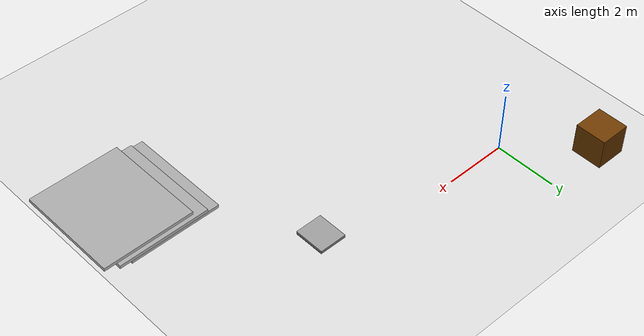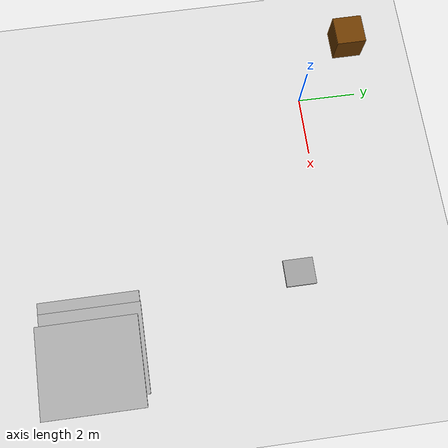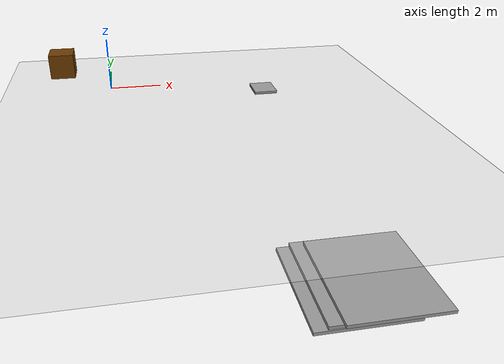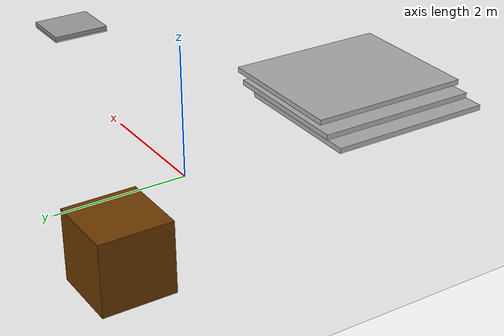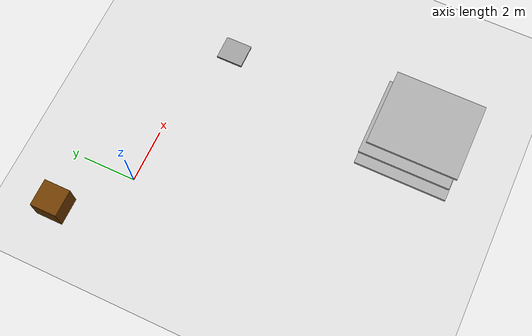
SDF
<sdf version="1.7">
 <world name="default">
  <model name="ground_plane">
   <static>1</static>
   <link name="link">
    <collision name="collision">
     <geometry><plane><normal>0 0 1</normal><size>100 100</size></plane></geometry>
     <surface><friction><ode><mu>100</mu><mu2>50</mu2></ode></friction></surface>
    </collision>
    <visual name="visual">
     <cast_shadows>0</cast_shadows>
     <geometry><plane><normal>0 0 1</normal><size>100 100</size></plane></geometry>
     <material>
      <script><uri>file://media/materials/scripts/gazebo.material</uri><name>Gazebo/Grey</name></script>
     </material>
    </visual>
   </link>
  </model>
  <model name="static_environment">
   <static>1</static>
   <link name="static_box">
    <pose>-2 2 0.5 0 -0 0</pose>
    <collision name="static_box_collision"><geometry><box><size>1 1 1</size></box></geometry></collision>
    <visual name="static_box_visual">
     <geometry><box><size>1 1 1</size></box></geometry>
     <material><ambient>0.2 0.2 0.2 1</ambient><diffuse>0.421 0.225 0 1</diffuse></material>
    </visual>
   </link>
  </model>
  <model name="Untitled_0">
   <link name="link_0">
    <inertial>
     <mass>1.68503</mass>
     <inertia><ixx>2.15864</ixx><ixy>0</ixy><ixz>0</ixz><iyy>1.66859</iyy><iyz>0</iyz><izz>3.82285</izz></inertia>
    </inertial>
    <pose>-0.45963 0.03371 -0.129963 0 -0 0</pose>
    <visual name="visual">
     <geometry><box><size>3.4449 3.91883 0.12488</size></box></geometry>
     <material>
      <lighting>1</lighting>
      <script><uri>file://media/materials/scripts/gazebo.material</uri><name>Gazebo/Grey</name></script>
      <shader type="pixel"/>
     </material>
    </visual>
    <collision name="collision">
     <geometry><box><size>3.4449 3.91883 0.12488</size></box></geometry>
     <surface>
      <friction>
       <ode><mu>1</mu><mu2>1</mu2><fdir1>0 0 0</fdir1><slip1>0</slip1><slip2>0</slip2></ode>
       <torsional>
        <coefficient>1</coefficient>
        <patch_radius>0</patch_radius>
        <surface_radius>0</surface_radius>
        <use_patch_radius>1</use_patch_radius>
        <ode><slip>0</slip></ode>
       </torsional>
      </friction>
      <bounce><restitution_coefficient>0</restitution_coefficient><threshold>1e+06</threshold></bounce>
      <contact>
       <collide_without_contact>0</collide_without_contact>
       <collide_without_contact_bitmask>1</collide_without_contact_bitmask>
       <collide_bitmask>1</collide_bitmask>
       <ode>
        <soft_cfm>0</soft_cfm>
        <soft_erp>0.2</soft_erp>
        <kp>1e+13</kp>
        <kd>1</kd>
        <max_vel>0.01</max_vel>
        <min_depth>0</min_depth>
       </ode>
       <bullet>
        <split_impulse>1</split_impulse>
        <split_impulse_penetration_threshold>-0.01</split_impulse_penetration_threshold>
        <soft_cfm>0</soft_cfm>
        <soft_erp>0.2</soft_erp>
        <kp>1e+13</kp>
        <kd>1</kd>
       </bullet>
      </contact>
     </surface>
    </collision>
   </link>
   <link name="link_0_clone">
    <inertial>
     <mass>1.68503</mass>
     <inertia><ixx>2.15864</ixx><ixy>0</ixy><ixz>0</ixz><iyy>1.66859</iyy><iyz>0</iyz><izz>3.82285</izz></inertia>
    </inertial>
    <pose>-0.00552 0.0581 0.005063 0 -0 0</pose>
    <visual name="visual">
     <geometry><box><size>3.4449 3.91883 0.12488</size></box></geometry>
     <material>
      <lighting>1</lighting>
      <script><uri>file://media/materials/scripts/gazebo.material</uri><name>Gazebo/Grey</name></script>
      <shader type="pixel"/>
     </material>
    </visual>
    <collision name="collision">
     <geometry><box><size>3.4449 3.91883 0.12488</size></box></geometry>
     <surface>
      <friction>
       <ode><mu>1</mu><mu2>1</mu2><fdir1>0 0 0</fdir1><slip1>0</slip1><slip2>0</slip2></ode>
       <torsional>
        <coefficient>1</coefficient>
        <patch_radius>0</patch_radius>
        <surface_radius>0</surface_radius>
        <use_patch_radius>1</use_patch_radius>
        <ode><slip>0</slip></ode>
       </torsional>
      </friction>
      <bounce><restitution_coefficient>0</restitution_coefficient><threshold>1e+06</threshold></bounce>
      <contact>
       <collide_without_contact>0</collide_without_contact>
       <collide_without_contact_bitmask>1</collide_without_contact_bitmask>
       <collide_bitmask>1</collide_bitmask>
       <ode>
        <soft_cfm>0</soft_cfm>
        <soft_erp>0.2</soft_erp>
        <kp>1e+13</kp>
        <kd>1</kd>
        <max_vel>0.01</max_vel>
        <min_depth>0</min_depth>
       </ode>
       <bullet>
        <split_impulse>1</split_impulse>
        <split_impulse_penetration_threshold>-0.01</split_impulse_penetration_threshold>
        <soft_cfm>0</soft_cfm>
        <soft_erp>0.2</soft_erp>
        <kp>1e+13</kp>
        <kd>1</kd>
       </bullet>
      </contact>
     </surface>
    </collision>
   </link>
   <link name="link_0_clone_0">
    <inertial>
     <mass>1.68503</mass>
     <inertia><ixx>2.15864</ixx><ixy>0</ixy><ixz>0</ixz><iyy>1.66859</iyy><iyz>0</iyz><izz>3.82285</izz></inertia>
    </inertial>
    <pose>0.465153 -0.091812 0.1249 0 -0 0</pose>
    <visual name="visual">
     <geometry><box><size>3.4449 3.91883 0.12488</size></box></geometry>
     <material>
      <lighting>1</lighting>
      <script><uri>file://media/materials/scripts/gazebo.material</uri><name>Gazebo/Grey</name></script>
      <shader type="pixel"/>
     </material>
    </visual>
    <collision name="collision">
     <geometry><box><size>3.4449 3.91883 0.12488</size></box></geometry>
     <surface>
      <friction>
       <ode><mu>1</mu><mu2>1</mu2><fdir1>0 0 0</fdir1><slip1>0</slip1><slip2>0</slip2></ode>
       <torsional>
        <coefficient>1</coefficient>
        <patch_radius>0</patch_radius>
        <surface_radius>0</surface_radius>
        <use_patch_radius>1</use_patch_radius>
        <ode><slip>0</slip></ode>
       </torsional>
      </friction>
      <bounce><restitution_coefficient>0</restitution_coefficient><threshold>1e+06</threshold></bounce>
      <contact>
       <collide_without_contact>0</collide_without_contact>
       <collide_without_contact_bitmask>1</collide_without_contact_bitmask>
       <collide_bitmask>1</collide_bitmask>
       <ode>
        <soft_cfm>0</soft_cfm>
        <soft_erp>0.2</soft_erp>
        <kp>1e+13</kp>
        <kd>1</kd>
        <max_vel>0.01</max_vel>
        <min_depth>0</min_depth>
       </ode>
       <bullet>
        <split_impulse>1</split_impulse>
        <split_impulse_penetration_threshold>-0.01</split_impulse_penetration_threshold>
        <soft_cfm>0</soft_cfm>
        <soft_erp>0.2</soft_erp>
        <kp>1e+13</kp>
        <kd>1</kd>
       </bullet>
      </contact>
     </surface>
    </collision>
   </link>
   <static>1</static>
   <pose>7.47538 -8.60314 -3.68102 0 -0 0</pose>
  </model>
  <model name="unit_box">
   <link name="link">
    <inertial>
     <mass>1.03</mass>
     <inertia>
      <ixx>0.171667</ixx>
      <ixy>0</ixy>
      <ixz>0</ixz>
      <iyy>0.171667</iyy>
      <iyz>0</iyz>
      <izz>0.171667</izz>
     </inertia>
    </inertial>
    <pose>-0 0 -0.5 0 -0 0</pose>
    <visual name="visual">
     <geometry><box><size>0.89 1 0.1</size></box></geometry>
     <material>
      <script><name>Gazebo/Grey</name><uri>file://media/materials/scripts/gazebo.material</uri></script>
      <shader type="pixel"><normal_map>__default__</normal_map></shader>
      <ambient>0.3 0.3 0.3 1</ambient>
      <diffuse>0.7 0.7 0.7 1</diffuse>
      <specular>0.01 0.01 0.01 1</specular>
      <emissive>0 0 0 1</emissive>
     </material>
    </visual>
    <collision name="collision">
     <geometry><box><size>1 1 1</size></box></geometry>
     <surface>
      <friction>
       <ode><mu>1</mu><mu2>1</mu2><fdir1>0 0 0</fdir1><slip1>0</slip1><slip2>0</slip2></ode>
       <torsional>
        <coefficient>1</coefficient>
        <patch_radius>0</patch_radius>
        <surface_radius>0</surface_radius>
        <use_patch_radius>1</use_patch_radius>
        <ode><slip>0</slip></ode>
       </torsional>
      </friction>
      <bounce><restitution_coefficient>0</restitution_coefficient><threshold>1e+06</threshold></bounce>
      <contact>
       <collide_without_contact>0</collide_without_contact>
       <collide_without_contact_bitmask>1</collide_without_contact_bitmask>
       <collide_bitmask>1</collide_bitmask>
       <ode>
        <soft_cfm>0</soft_cfm>
        <soft_erp>0.2</soft_erp>
        <kp>1e+13</kp>
        <kd>1</kd>
        <max_vel>0.01</max_vel>
        <min_depth>0</min_depth>
       </ode>
       <bullet>
        <split_impulse>1</split_impulse>
        <split_impulse_penetration_threshold>-0.01</split_impulse_penetration_threshold>
        <soft_cfm>0</soft_cfm>
        <soft_erp>0.2</soft_erp>
        <kp>1e+13</kp>
        <kd>1</kd>
       </bullet>
      </contact>
     </surface>
    </collision>
   </link>
   <static>0</static>
   <pose>6.09106 -1.0458 0.5 0 -0 0</pose>
  </model>
 </world>
</sdf>
